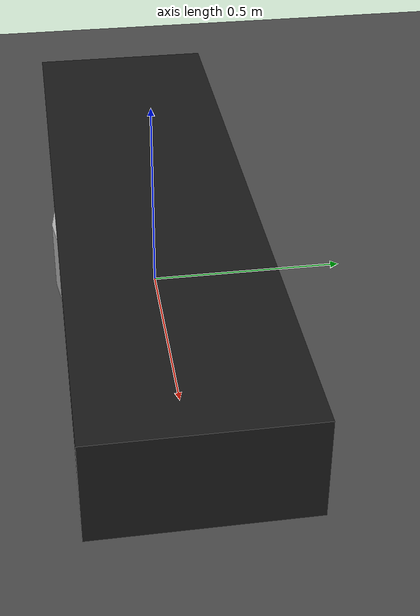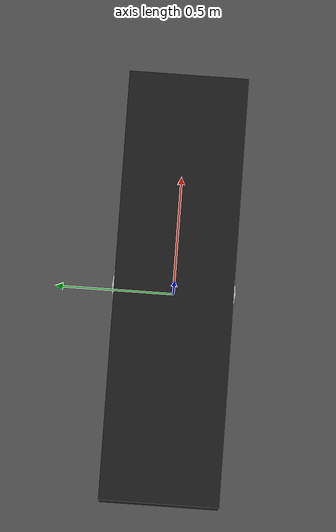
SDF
<?xml version="1.0" ?>
<!--
  Step 1 of the build roadmap: empty world with only a ground plane.
  Goal: confirm Gazebo Jetty launches and the physics engine runs.

  Run with:
    gz sim simulation/worlds/empty.sdf
-->
<sdf version="1.10">
  <world name="empty">

    <!-- Physics: DART engine, 1 ms step. Good default for vehicle dynamics. -->
    <physics name="default" type="dart">
      <max_step_size>0.001</max_step_size>
      <real_time_factor>1.0</real_time_factor>
    </physics>

    <!-- Required Gazebo system plugins -->
    <plugin filename="gz-sim-physics-system"
            name="gz::sim::systems::Physics"/>
    <plugin filename="gz-sim-scene-broadcaster-system"
            name="gz::sim::systems::SceneBroadcaster"/>
    <plugin filename="gz-sim-user-commands-system"
            name="gz::sim::systems::UserCommands"/>

    <!-- Lighting -->
    <light name="sun" type="directional">
      <cast_shadows>true</cast_shadows>
      <pose>0 0 10 0 0 0</pose>
      <diffuse>0.8 0.8 0.8 1</diffuse>
      <specular>0.2 0.2 0.2 1</specular>
      <direction>-0.5 0.1 -0.9</direction>
    </light>

    <!-- Ground plane -->
    <model name="ground_plane">
      <static>true</static>
      <link name="link">
        <collision name="collision">
          <geometry>
            <plane>
              <normal>0 0 1</normal>
              <size>200 200</size>
            </plane>
          </geometry>
        </collision>
        <visual name="visual">
          <geometry>
            <plane>
              <normal>0 0 1</normal>
              <size>200 200</size>
            </plane>
          </geometry>
          <material>
            <ambient>0.3 0.3 0.3 1</ambient>
            <diffuse>0.3 0.3 0.3 1</diffuse>
          </material>
        </visual>
      </link>
    </model>

    <!-- FSD car — requires GZ_SIM_RESOURCE_PATH to include simulation/models -->
    <include>
      <uri>model://fsd_car</uri>
      <pose>0 0 0.1 0 0 0</pose>
    </include>

  </world>
</sdf>

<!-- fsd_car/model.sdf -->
<sdf version="1.10">
  <model name="fsd_car">

    <link name="chassis">
      <inertial>
        <mass>230</mass>           <!-- kg, total vehicle mass (placeholder, FS-typical) -->
        <inertia>
          <ixx>6.52</ixx>          <!-- kg·m², roll -->
          <iyy>63.8</iyy>          <!-- kg·m², pitch -->
          <izz>66.9</izz>          <!-- kg·m², yaw -->
          <ixy>0</ixy>
          <ixz>0</ixz>
          <iyz>0</iyz>
        </inertia>
      </inertial>
      <visual name="chassis_visual">
        <!-- TODO: replace box with a proper mesh once CAD is available -->
        <geometry>
          <box><size>1.8 0.5 0.3</size></box>  <!-- length width height, meters -->
        </geometry>
        <material>
          <ambient>0.1 0.1 0.1 1</ambient>
          <diffuse>0.1 0.1 0.1 1</diffuse>
        </material>
      </visual>
      <collision name="chassis_collision">
        <geometry>
          <box><size>1.8 0.5 0.3</size></box>
        </geometry>
      </collision>

    </link> <!-- chassis -->

    <!-- ================================================================
         WHEELS — 4x (AWD, Ackermann front steering)
         ================================================================ -->

    <!-- Front-left -->
    <joint name="front_left_wheel_steering_joint" type="revolute">
      <parent>chassis</parent>
      <child>front_left_steering_knuckle</child>
      <axis>
        <xyz>0 0 1</xyz>
        <limit>
          <lower>-0.332</lower>   <!-- negative of steering_limit, radians -->
          <upper>0.332</upper>    <!-- steering_limit, radians -->
          <effort>1e6</effort>    <!-- DART only enforces position limits under
                                        velocity control if an effort limit is set -->
        </limit>
      </axis>
      <pose>0.775 0.6 -0.05 0 0 0</pose>
    </joint>

    <link name="front_left_steering_knuckle">
      <inertial>
        <mass>1</mass>
        <inertia><ixx>0.001</ixx><iyy>0.001</iyy><izz>0.001</izz><ixy>0</ixy><ixz>0</ixz><iyz>0</iyz></inertia>
      </inertial>
    </link>

    <joint name="front_left_wheel_joint" type="revolute">
      <parent>front_left_steering_knuckle</parent>
      <child>front_left_wheel</child>
      <axis><xyz>0 1 0</xyz></axis>
    </joint>

    <link name="front_left_wheel">
      <inertial>
        <mass>5</mass>
        <inertia><ixx>0.098</ixx><iyy>0.169</iyy><izz>0.098</izz><ixy>0</ixy><ixz>0</ixz><iyz>0</iyz></inertia>
      </inertial>
      <visual name="visual"><geometry><cylinder><radius>0.26</radius><length>0.18</length></cylinder></geometry></visual>
      <collision name="collision">
        <geometry><cylinder><radius>0.26</radius><length>0.18</length></cylinder></geometry>
        <surface><friction><ode>
          <mu>1.5</mu>    <!-- longitudinal grip -->
          <mu2>1.5</mu2>  <!-- lateral grip -->
        </ode></friction></surface>
      </collision>
    </link>

    <!-- Front-right (mirror of front-left, y flipped) -->
    <joint name="front_right_wheel_steering_joint" type="revolute">
      <parent>chassis</parent>
      <child>front_right_steering_knuckle</child>
      <axis>
        <xyz>0 0 1</xyz>
        <limit>
          <lower>-0.332</lower>
          <upper>0.332</upper>
          <effort>1e6</effort>
        </limit>
      </axis>
      <pose>0.775 -0.6 -0.05 0 0 0</pose>
    </joint>

    <link name="front_right_steering_knuckle">
      <inertial>
        <mass>1</mass>
        <inertia><ixx>0.001</ixx><iyy>0.001</iyy><izz>0.001</izz><ixy>0</ixy><ixz>0</ixz><iyz>0</iyz></inertia>
      </inertial>
    </link>

    <joint name="front_right_wheel_joint" type="revolute">
      <parent>front_right_steering_knuckle</parent>
      <child>front_right_wheel</child>
      <axis><xyz>0 1 0</xyz></axis>
    </joint>

    <link name="front_right_wheel">
      <inertial>
        <mass>5</mass>
        <inertia><ixx>0.098</ixx><iyy>0.169</iyy><izz>0.098</izz><ixy>0</ixy><ixz>0</ixz><iyz>0</iyz></inertia>
      </inertial>
      <visual name="visual"><geometry><cylinder><radius>0.26</radius><length>0.18</length></cylinder></geometry></visual>
      <collision name="collision">
        <geometry><cylinder><radius>0.26</radius><length>0.18</length></cylinder></geometry>
        <surface><friction><ode>
          <mu>1.5</mu>
          <mu2>1.5</mu2>
        </ode></friction></surface>
      </collision>
    </link>

    <joint name="rear_left_wheel_joint" type="revolute">
      <parent>chassis</parent>
      <child>rear_left_wheel</child>
      <axis><xyz>0 1 0</xyz></axis>
      <pose>-0.775 0.6 -0.05 0 0 0</pose>
    </joint>

    <link name="rear_left_wheel">
      <inertial>
        <mass>5</mass>
        <inertia><ixx>0.098</ixx><iyy>0.169</iyy><izz>0.098</izz><ixy>0</ixy><ixz>0</ixz><iyz>0</iyz></inertia>
      </inertial>
      <visual name="visual"><geometry><cylinder><radius>0.26</radius><length>0.18</length></cylinder></geometry></visual>
      <collision name="collision">
        <geometry><cylinder><radius>0.26</radius><length>0.18</length></cylinder></geometry>
        <surface><friction><ode>
          <mu>1.5</mu>
          <mu2>1.5</mu2>
        </ode></friction></surface>
      </collision>
    </link>

    <joint name="rear_right_wheel_joint" type="revolute">
      <parent>chassis</parent>
      <child>rear_right_wheel</child>
      <axis><xyz>0 1 0</xyz></axis>
      <pose>-0.775 -0.6 -0.05 0 0 0</pose>
    </joint>

    <link name="rear_right_wheel">
      <inertial>
        <mass>5</mass>
        <inertia><ixx>0.098</ixx><iyy>0.169</iyy><izz>0.098</izz><ixy>0</ixy><ixz>0</ixz><iyz>0</iyz></inertia>
      </inertial>
      <visual name="visual"><geometry><cylinder><radius>0.26</radius><length>0.18</length></cylinder></geometry></visual>
      <collision name="collision">
        <geometry><cylinder><radius>0.26</radius><length>0.18</length></cylinder></geometry>
        <surface><friction><ode>
          <mu>1.5</mu>
          <mu2>1.5</mu2>
        </ode></friction></surface>
      </collision>
    </link>

    <plugin filename="gz-sim-ackermann-steering-system"
            name="gz::sim::systems::AckermannSteering">
      <!-- Driven wheels (AWD: both front and rear) -->
      <left_joint>front_left_wheel_joint</left_joint>
      <left_joint>rear_left_wheel_joint</left_joint>
      <right_joint>front_right_wheel_joint</right_joint>
      <right_joint>rear_right_wheel_joint</right_joint>

      <!-- Steering joints (front axle only) -->
      <left_steering_joint>front_left_wheel_steering_joint</left_steering_joint>
      <right_steering_joint>front_right_wheel_steering_joint</right_steering_joint>

      <kingpin_width>1.2</kingpin_width>       <!-- meters -->
      <wheel_base>1.55</wheel_base>            <!-- meters, front-to-rear axle distance -->
      <wheel_separation>1.2</wheel_separation> <!-- meters, track width -->
      <wheel_radius>0.26</wheel_radius>        <!-- meters -->
      <steering_limit>0.332</steering_limit>   <!-- radians; atan(wheel_base / min_turning_radius),
                                                     here assuming a 4.5m min turning radius -->

      <min_velocity>-5</min_velocity>          <!-- m/s, typically negative for reverse -->
      <max_velocity>20</max_velocity>
      <min_acceleration>-8</min_acceleration>  <!-- m/s² -->
      <max_acceleration>5</max_acceleration>   <!-- m/s² -->

      <!-- gz-transport topic the control process publishes commands to -->
      <topic>/cmd_ackermann</topic>
    </plugin>

    <!-- Required: broadcasts joint states so the steering works in simulation -->
    <plugin filename="gz-sim-joint-state-publisher-system"
            name="gz::sim::systems::JointStatePublisher"/>

  </model>
</sdf>
